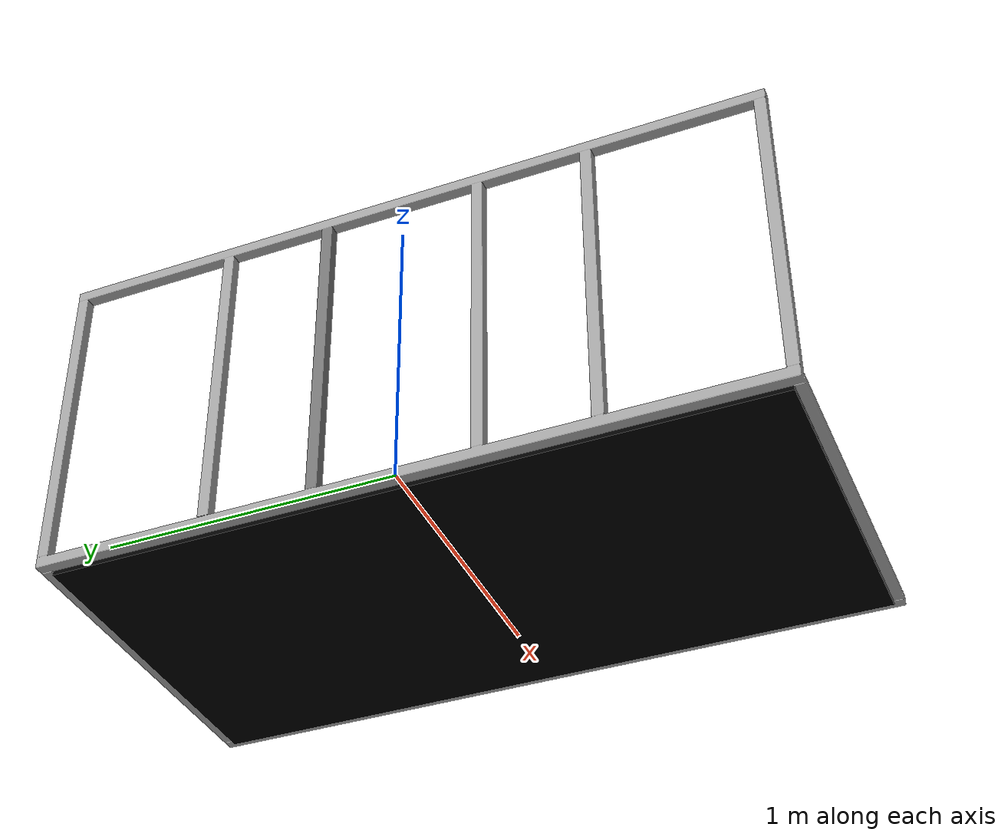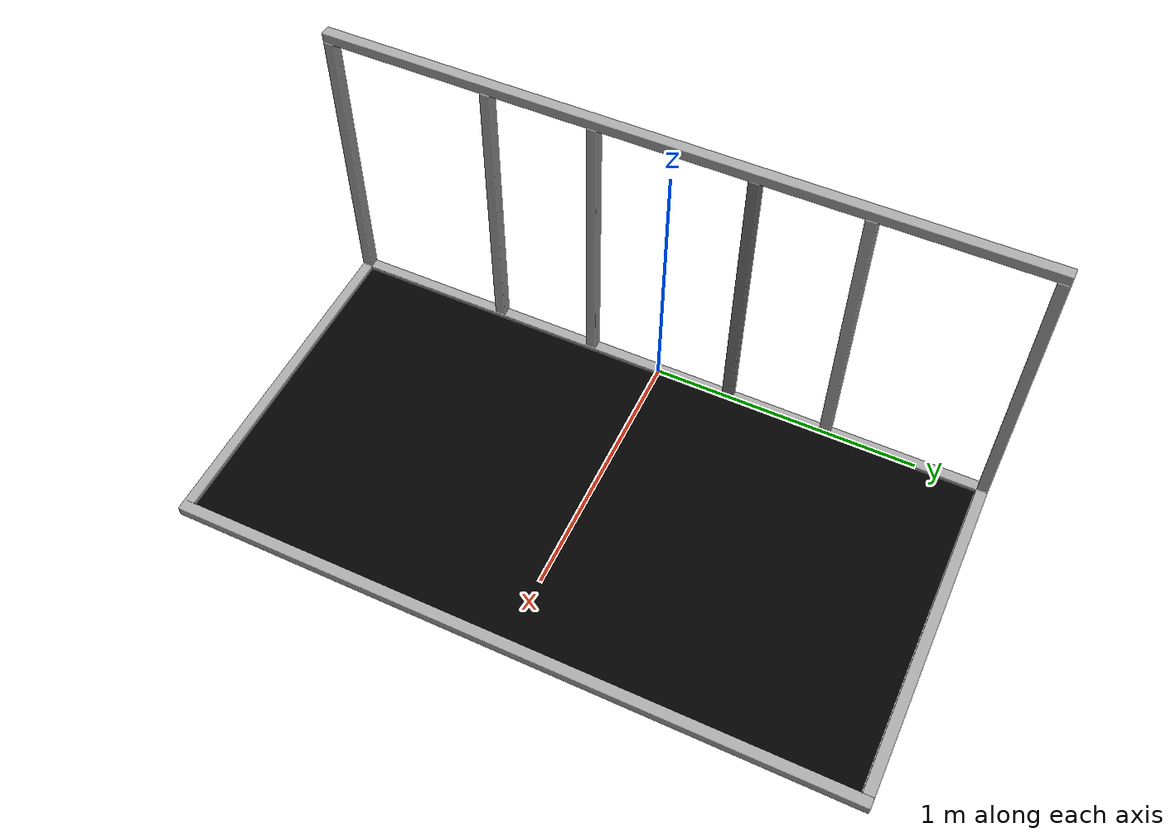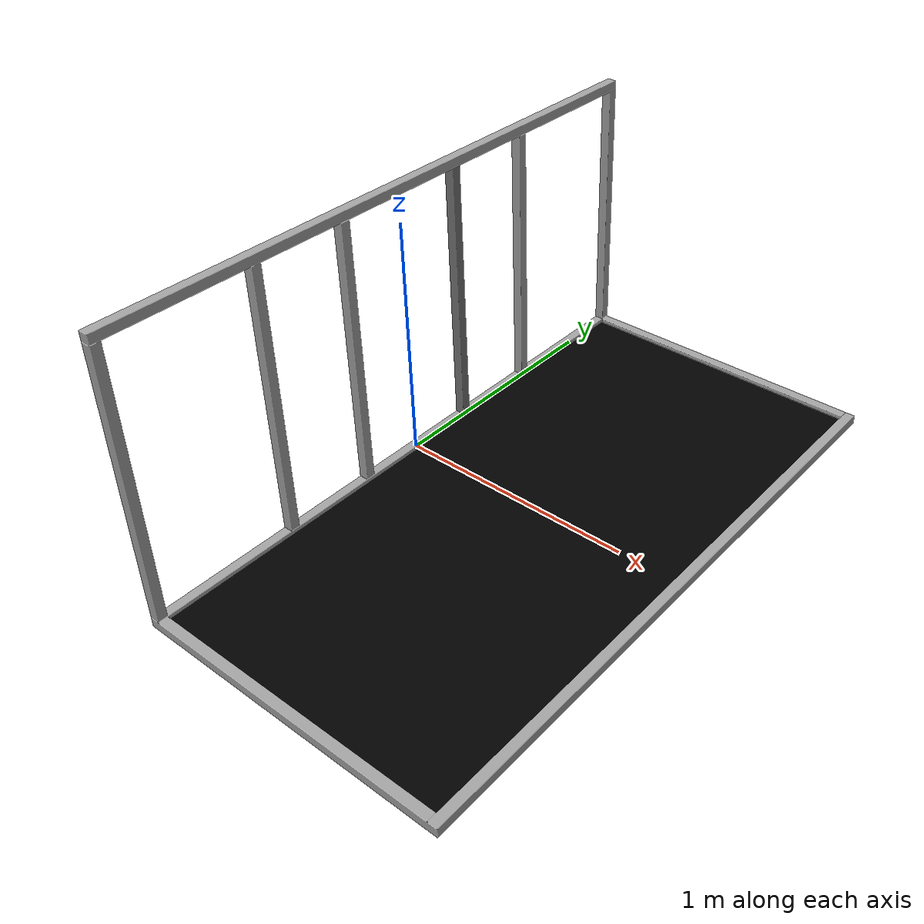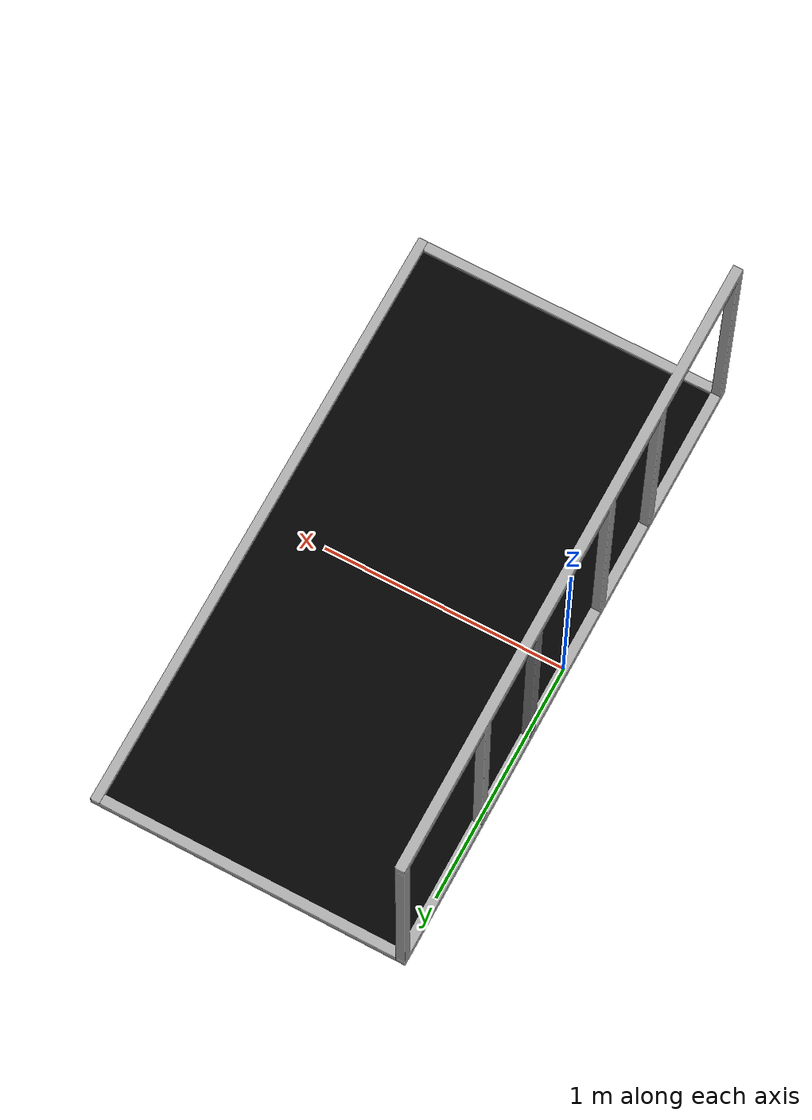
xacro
<robot name="bumblebee_ee"
  xmlns:xacro="http://www.ros.org/wiki/xacro">

  <link name="world"/>

  <!-- Fix this robot to the world -->
  <joint name="world_joint"  type="fixed">
    <origin xyz="0 0 0" rpy="0 0 0" />
    <parent link="world"/>
    <child link="stage_link"/>
  </joint>

  <link name = "stage_link">
    <inertial>
      <origin xyz="0 0 0" />
      <mass value="100" />
      <inertia
        ixx="1" ixy="0"   ixz="0"
                iyy="1"   iyz="0"
                          izz="1" />
    </inertial>
    <visual>
      <origin rpy="0 0 0 " xyz="0 0 0"/>
      <geometry>
        <mesh filename="package://lcsr_barrett/models/meshes/bench_lattice.dae"/>
      </geometry>
    </visual>
    <collision>
      <origin rpy="0 0 0 " xyz="0 0 0"/>
      <geometry>
        <mesh filename="package://lcsr_barrett/models/meshes/bench_lattice.stl"/>
      </geometry>
    </collision>
  </link>

</robot>
